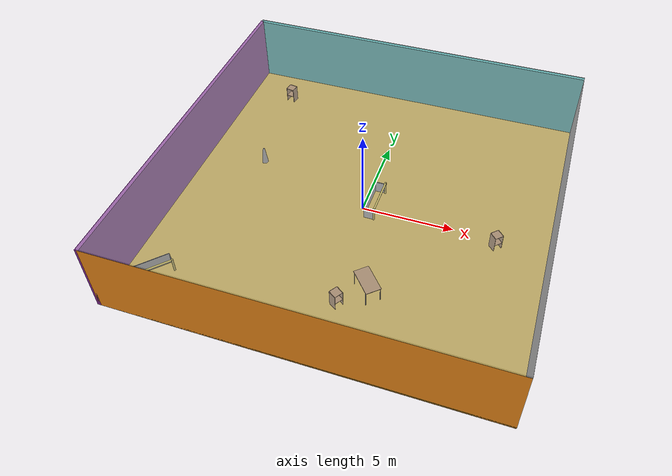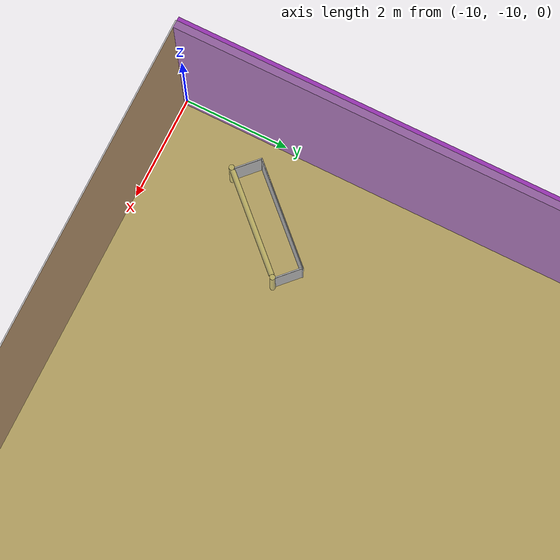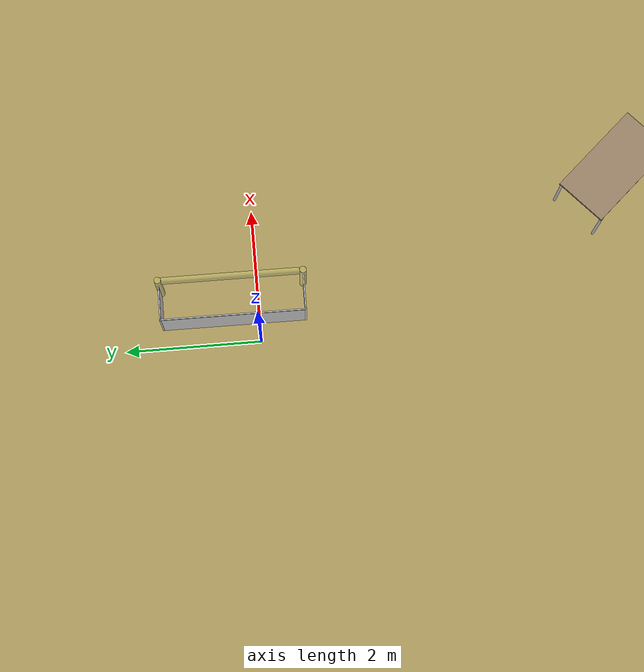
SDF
<sdf version="1.4">
 <world name="default">
  <physics type="ode">
   <max_step_size>0.001</max_step_size>
   <real_time_factor>1</real_time_factor>
   <real_time_update_rate>1000</real_time_update_rate>
   <gravity>0 0 -9.8</gravity>
  </physics>
  <scene><ambient>0.4 0.4 0.4 1</ambient><background>0.7 0.7 0.7 1</background><shadows>1</shadows></scene>
  <model name="Surrounding">
   <static>1</static>
   <link name="Ceiling">
    <collision name="Ceiling_Collision"><geometry><box><size>20 20 0.1</size></box></geometry></collision>
    <visual name="Ceiling_Visual">
     <geometry><box><size>20 20 0.1</size></box></geometry>
     <material>
      <script><uri>file://media/materials/scripts/gazebo.material</uri><name>Gazebo/GreyTransparent</name></script>
     </material>
    </visual>
    <pose>0 0 4.05 0 0 0</pose>
   </link>
   <link name="Wall_South">
    <collision name="Wall_South_Collision">
     <geometry><box><size>20 0 4</size></box></geometry>
     <pose>0 0 2 0 -0 0</pose>
    </collision>
    <visual name="Wall_South_Visual">
     <pose>0 0 2 0 -0 0</pose>
     <geometry><box><size>20 0 4</size></box></geometry>
     <material>
      <script><uri>file://media/materials/scripts/gazebo.material</uri><name>Gazebo/Orange</name></script>
     </material>
    </visual>
    <velocity_decay><linear>0</linear><angular>0</angular></velocity_decay>
    <pose>0 -10 0 0 -0 0</pose>
   </link>
   <link name="Wall_East">
    <collision name="Wall_21_Collision">
     <geometry><box><size>20 0 4</size></box></geometry>
     <pose>0 0 2 0 -0 0</pose>
    </collision>
    <visual name="Wall_21_Visual">
     <pose>0 0 2 0 -0 0</pose>
     <geometry><box><size>20 0 4</size></box></geometry>
     <material>
      <script><uri>file://media/materials/scripts/gazebo.material</uri><name>Gazebo/CloudySky</name></script>
     </material>
    </visual>
    <velocity_decay><linear>0</linear><angular>0</angular></velocity_decay>
    <pose>10 0 0 0 -0 1.5708</pose>
   </link>
   <link name="Wall_North">
    <collision name="Wall_22_Collision">
     <geometry><box><size>20 0.2 4</size></box></geometry>
     <pose>0 0 2 0 -0 0</pose>
    </collision>
    <visual name="Wall_22_Visual">
     <pose>0 0 2 0 -0 0</pose>
     <geometry><box><size>20 0.2 4</size></box></geometry>
     <material>
      <script>
       <uri>file://media/materials/scripts/gazebo.material</uri>
       <name>Gazebo/TurquoiseGlowOutline</name>
      </script>
     </material>
    </visual>
    <velocity_decay><linear>0</linear><angular>0</angular></velocity_decay>
    <pose>0 10 0 0 -0 0</pose>
   </link>
   <link name="Wall_West">
    <collision name="Wall_23_Collision">
     <geometry><box><size>20 0.2 4</size></box></geometry>
     <pose>0 0 2 0 -0 0</pose>
    </collision>
    <visual name="Wall_23_Visual">
     <pose>0 0 2 0 -0 0</pose>
     <geometry><box><size>20 0.2 4</size></box></geometry>
     <material>
      <script><uri>file://media/materials/scripts/gazebo.material</uri><name>Gazebo/PurpleGlow</name></script>
     </material>
    </visual>
    <velocity_decay><linear>0</linear><angular>0</angular></velocity_decay>
    <pose>-10 0 0 0 0 -1.5708</pose>
   </link>
   <link name="Ground_link">
    <collision name="collision">
     <pose>0 0 .05 0 -0 0</pose>
     <geometry><box><size>20 20 0.1</size></box></geometry>
    </collision>
    <visual name="visual">
     <pose>0 0 .05 0 -0 0</pose>
     <geometry><box><size>20 20 0.1</size></box></geometry>
     <material>
      <script><uri>file://media/materials/scripts/gazebo.material</uri><name>Gazebo/Gold</name></script>
     </material>
    </visual>
   </link>
   <static>1</static>
  </model>
  <spherical_coordinates>
   <surface_model>EARTH_WGS84</surface_model>
   <latitude_deg>0</latitude_deg>
   <longitude_deg>0</longitude_deg>
   <elevation>0</elevation>
   <heading_deg>0</heading_deg>
  </spherical_coordinates>
  <light name="lightball_0" type="diffuse">
   <diffuse>0.8 0.8 0.8 1</diffuse>
   <specular>0.2 0.2 0.2 1</specular>
   <attenuation>
    <range>100</range>
    <constant>0.7</constant>
    <linear>0.01</linear>
    <quadratic>0.001</quadratic>
   </attenuation>
   <direction>-0.5 0.1 -0.9</direction>
   <pose>3.50862402622 1.31558246936 2.52048149012 0 0 0</pose>
  </light>
  <light name="lightball_1" type="diffuse">
   <diffuse>0.8 0.8 0.8 1</diffuse>
   <specular>0.2 0.2 0.2 1</specular>
   <attenuation>
    <range>100</range>
    <constant>0.7</constant>
    <linear>0.01</linear>
    <quadratic>0.001</quadratic>
   </attenuation>
   <direction>-0.5 0.1 -0.9</direction>
   <pose>7.16425722001 -9.64612912636 2.51637551077 0 0 0</pose>
  </light>
  <light name="lightball_2" type="diffuse">
   <diffuse>0.8 0.8 0.8 1</diffuse>
   <specular>0.2 0.2 0.2 1</specular>
   <attenuation>
    <range>100</range>
    <constant>0.7</constant>
    <linear>0.01</linear>
    <quadratic>0.001</quadratic>
   </attenuation>
   <direction>-0.5 0.1 -0.9</direction>
   <pose>2.22591210523 -8.54726565843 3.07708728824 0 0 0</pose>
  </light>
  <light name="lightball_3" type="diffuse">
   <diffuse>0.8 0.8 0.8 1</diffuse>
   <specular>0.2 0.2 0.2 1</specular>
   <attenuation>
    <range>100</range>
    <constant>0.7</constant>
    <linear>0.01</linear>
    <quadratic>0.001</quadratic>
   </attenuation>
   <direction>-0.5 0.1 -0.9</direction>
   <pose>2.44147913611 7.89808032899 2.01798679962 0 0 0</pose>
  </light>
  <light name="lightball_4" type="diffuse">
   <diffuse>0.8 0.8 0.8 1</diffuse>
   <specular>0.2 0.2 0.2 1</specular>
   <attenuation>
    <range>100</range>
    <constant>0.7</constant>
    <linear>0.01</linear>
    <quadratic>0.001</quadratic>
   </attenuation>
   <direction>-0.5 0.1 -0.9</direction>
   <pose>8.80814851323 -0.853795934547 0.907315766067 0 0 0</pose>
  </light>
  <light name="lightball_5" type="diffuse">
   <diffuse>0.8 0.8 0.8 1</diffuse>
   <specular>0.2 0.2 0.2 1</specular>
   <attenuation>
    <range>100</range>
    <constant>0.7</constant>
    <linear>0.01</linear>
    <quadratic>0.001</quadratic>
   </attenuation>
   <direction>-0.5 0.1 -0.9</direction>
   <pose>-2.42313108346 -0.833249172781 3.16998858786 0 0 0</pose>
  </light>
  <light name="lightball_6" type="diffuse">
   <diffuse>0.8 0.8 0.8 1</diffuse>
   <specular>0.2 0.2 0.2 1</specular>
   <attenuation>
    <range>100</range>
    <constant>0.7</constant>
    <linear>0.01</linear>
    <quadratic>0.001</quadratic>
   </attenuation>
   <direction>-0.5 0.1 -0.9</direction>
   <pose>5.11227766531 8.89958363526 1.19363512438 0 0 0</pose>
  </light>
  <light name="lightball_7" type="diffuse">
   <diffuse>0.8 0.8 0.8 1</diffuse>
   <specular>0.2 0.2 0.2 1</specular>
   <attenuation>
    <range>100</range>
    <constant>0.7</constant>
    <linear>0.01</linear>
    <quadratic>0.001</quadratic>
   </attenuation>
   <direction>-0.5 0.1 -0.9</direction>
   <pose>6.72736748738 -7.77728175222 3.40099100031 0 0 0</pose>
  </light>
  <light name="lightball_8" type="diffuse">
   <diffuse>0.8 0.8 0.8 1</diffuse>
   <specular>0.2 0.2 0.2 1</specular>
   <attenuation>
    <range>100</range>
    <constant>0.7</constant>
    <linear>0.01</linear>
    <quadratic>0.001</quadratic>
   </attenuation>
   <direction>-0.5 0.1 -0.9</direction>
   <pose>-6.32597686309 -5.22744387393 0.919000740109 0 0 0</pose>
  </light>
  <include>
   <uri>model://robocup_3Dsim_goal</uri>
   <pose>-8.28501628741 -7.81572435616 0 0 0 2.38089441621</pose>
  </include>
  <include>
   <uri>model://construction_cone</uri>
   <pose>-6.54622080576 1.72790918484 0 0 0 2.11903304962</pose>
  </include>
  <include><uri>model://cabinet</uri><pose>-7.2922304235 7.71471687339 0 0 0 1.39269678157</pose></include>
  <include><uri>model://cabinet</uri><pose>0.792955240026 -6.47561534291 0 0 0 2.55731920944</pose></include>
  <include><uri>model://table</uri><pose>1.96432990142 -5.32089909206 0 0 0 2.30009325403</pose></include>
  <include>
   <uri>model://robocup_3Dsim_goal</uri>
   <pose>0.82603214488 0.365811575533 0 0 0 3.13643799067</pose>
  </include>
  <include><uri>model://cabinet</uri><pose>7.32591287109 -0.546484130152 0 0 0 2.34184724096</pose></include>
 </world>
</sdf>

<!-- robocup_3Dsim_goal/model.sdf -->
<sdf version="1.5">
  <model name="robocup_3d_goal">
    <static>true</static>
    <link name="left_post">
      <pose>0 1.05 0.45 0 0 0</pose>
      <collision name="collision">
        <geometry>
          <cylinder>
            <radius>0.05</radius>
            <length>0.9</length>
          </cylinder>
        </geometry>
      </collision>
      <visual name="visual">
        <geometry>
          <cylinder>
            <radius>0.05</radius>
            <length>0.9</length>
          </cylinder>
        </geometry>
        <material>
          <script>
            <uri>file://media/materials/scripts/gazebo.material</uri>
            <name>Gazebo/ZincYellow</name>
          </script>
        </material>
      </visual>
    </link>
    <link name="left_support_horiz_lower">
      <pose>0.30 1.05 0.01 0 0 0</pose>
      <collision name="collision">
        <geometry>
          <box>
            <size>0.50 0.02 0.02</size>
          </box>
        </geometry>
      </collision>
      <visual name="visual">
        <geometry>
          <box>
            <size>0.50 0.02 0.02</size>
          </box>
        </geometry>
        <material>
          <script>
            <uri>file://media/materials/scripts/gazebo.material</uri>
            <name>Gazebo/White</name>
          </script>
        </material>
      </visual>
    </link>
    <link name="left_support_horiz_upper">
      <pose>0.30 1.05 0.79 0 0 0</pose>
      <collision name="collision">
        <geometry>
          <box>
            <size>0.50 0.02 0.02</size>
          </box>
        </geometry>
      </collision>
      <visual name="visual">
        <geometry>
          <box>
            <size>0.50 0.02 0.02</size>
          </box>
        </geometry>
        <material>
          <script>
            <uri>file://media/materials/scripts/gazebo.material</uri>
            <name>Gazebo/White</name>
          </script>
        </material>
      </visual>
    </link>
    <link name="left_support_vertical">
      <pose>0.56 1.05 0.4 0 1.5708 0</pose>
      <collision name="collision">
        <geometry>
          <box>
            <size>0.80 0.02 0.02</size>
          </box>
        </geometry>
      </collision>
      <visual name="visual">
        <geometry>
          <box>
            <size>0.80 0.02 0.02</size>
          </box>
        </geometry>
        <material>
          <script>
            <uri>file://media/materials/scripts/gazebo.material</uri>
            <name>Gazebo/White</name>
          </script>
        </material>
      </visual>
    </link>
    <link name="right_support_horiz_lower">
      <pose>0.30 -1.05 0.01 0 0 0</pose>
      <collision name="collision">
        <geometry>
          <box>
            <size>0.50 0.02 0.02</size>
          </box>
        </geometry>
      </collision>
      <visual name="visual">
        <geometry>
          <box>
            <size>0.50 0.02 0.02</size>
          </box>
        </geometry>
        <material>
          <script>
            <uri>file://media/materials/scripts/gazebo.material</uri>
            <name>Gazebo/White</name>
          </script>
        </material>
      </visual>
    </link>
    <link name="right_support_horiz_upper">
      <pose>0.30 -1.05 0.79 0 0 0</pose>
      <collision name="collision">
        <geometry>
          <box>
            <size>0.50 0.02 0.02</size>
          </box>
        </geometry>
      </collision>
      <visual name="visual">
        <geometry>
          <box>
            <size>0.50 0.02 0.02</size>
          </box>
        </geometry>
        <material>
          <script>
            <uri>file://media/materials/scripts/gazebo.material</uri>
            <name>Gazebo/White</name>
          </script>
        </material>
      </visual>
    </link>
    <link name="right_support_vertical">
      <pose>0.56 -1.05 0.4 0 1.5708 0</pose>
      <collision name="collision">
        <geometry>
          <box>
            <size>0.80 0.02 0.02</size>
          </box>
        </geometry>
      </collision>
      <visual name="visual">
        <geometry>
          <box>
            <size>0.80 0.02 0.02</size>
          </box>
        </geometry>
        <material>
          <script>
            <uri>file://media/materials/scripts/gazebo.material</uri>
            <name>Gazebo/White</name>
          </script>
        </material>
      </visual>
    </link>
    <link name="center_support_horiz_lower">
      <pose>0.56 0 0.01 0 1.5708 0</pose>
      <collision name="collision">
        <geometry>
          <box>
            <size>0.02 2.08 0.02</size>
          </box>
        </geometry>
      </collision>
      <visual name="visual">
        <geometry>
          <box>
            <size>0.02 2.08 0.02</size>
          </box>
        </geometry>
        <material>
          <script>
            <uri>file://media/materials/scripts/gazebo.material</uri>
            <name>Gazebo/White</name>
          </script>
        </material>
      </visual>
    </link>
    <link name="center_support_horiz_upper">
      <pose>0.56 0 0.79 0 1.5708 0</pose>
      <collision name="collision">
        <geometry>
          <box>
            <size>0.02 2.08 0.02</size>
          </box>
        </geometry>
      </collision>
      <visual name="visual">
        <geometry>
          <box>
            <size>0.02 2.08 0.02</size>
          </box>
        </geometry>
        <material>
          <script>
            <uri>file://media/materials/scripts/gazebo.material</uri>
            <name>Gazebo/White</name>
          </script>
        </material>
      </visual>
    </link>
    <link name="right_post">
      <pose>0 -1.05 0.45 0 0 0</pose>
      <collision name="collision">
        <geometry>
          <cylinder>
            <radius>0.05</radius>
            <length>0.9</length>
          </cylinder>
        </geometry>
      </collision>
      <visual name="visual">
        <geometry>
          <cylinder>
            <radius>0.05</radius>
            <length>0.9</length>
          </cylinder>
        </geometry>
        <material>
          <script>
            <uri>file://media/materials/scripts/gazebo.material</uri>
            <name>Gazebo/ZincYellow</name>
          </script>
        </material>
      </visual>
    </link>
    <link name="crossbar">
      <pose>0 0 0.85 1.57 1.57 0</pose>
      <collision name="collision">
        <geometry>
          <cylinder>
            <radius>0.05</radius>
            <length>2.0</length>
          </cylinder>
        </geometry>
      </collision>
      <visual name="visual">
        <geometry>
          <cylinder>
            <radius>0.05</radius>
            <length>2.0</length>
          </cylinder>
        </geometry>
        <material>
          <script>
            <uri>file://media/materials/scripts/gazebo.material</uri>
            <name>Gazebo/ZincYellow</name>
          </script>
        </material>
      </visual>
    </link>
    <link name="center_net">
      <pose>0.56 0 0.40 0 0 0</pose>
      <collision name="collision">
        <geometry>
          <box>
            <size>0.01 2.1 0.80</size>
          </box>
        </geometry>
      </collision>
      <visual name="visual">
        <geometry>
          <box>
            <size>0.01 2.1 0.80</size>
          </box>
        </geometry>
        <material>
          <script>
            <uri>model://../model_source/models/robocup09_spl_field/materials/scripts/</uri>
            <uri>model://../model_source/models/robocup09_spl_field/materials/textures/</uri>
            <name>RoboCup/Net</name>
          </script>
        </material>
      </visual>
    </link>
    <link name="left_net">
      <pose>0.30 1.05 0.40 0 0 0</pose>
      <collision name="collision">
        <geometry>
          <box>
            <size>0.50 0.01 0.76</size>
          </box>
        </geometry>
      </collision>
      <visual name="visual">
        <geometry>
          <box>
            <size>0.50 0.01 0.76</size>
          </box>
        </geometry>
        <material>
          <script>
            <uri>model://../model_source/models/robocup09_spl_field/materials/scripts/</uri>
            <uri>model://../model_source/models/robocup09_spl_field/materials/textures/</uri>
            <name>RoboCup/Net</name>
          </script>
        </material>
      </visual>
    </link>
    <link name="right_net">
      <pose>0.30 -1.05 0.40 0 0 0</pose>
      <collision name="collision">
        <geometry>
          <box>
            <size>0.50 0.01 0.76</size>
          </box>
        </geometry>
      </collision>
      <visual name="visual">
        <geometry>
          <box>
            <size>0.50 0.01 0.76</size>
          </box>
        </geometry>
        <material>
          <script>
            <uri>model://../model_source/models/robocup09_spl_field/materials/scripts/</uri>
            <uri>model://../model_source/models/robocup09_spl_field/materials/textures/</uri>
            <name>RoboCup/Net</name>
          </script>
        </material>
      </visual>
    </link>
  </model>
</sdf>

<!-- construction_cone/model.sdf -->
<sdf version="1.5">
  <model name="Construction Cone">
    <link name="link">
      <collision name="collision">
        <geometry>
          <mesh>
            <scale>10 10 10</scale>
            <uri>file://isr-testbed/construction_cone/meshes/construction_cone.dae</uri>
          </mesh>
        </geometry>
      </collision>
      <visual name="visual">
        <geometry>
          <mesh>
            <scale>10 10 10</scale>
            <uri>file://isr-testbed/construction_cone/meshes/construction_cone.dae</uri>
          </mesh>
        </geometry>
      </visual>
    </link>
  </model>
</sdf>

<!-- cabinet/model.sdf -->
<sdf version="1.5">
  <model name="cabinet">
    <static>true</static>
    <link name="cabinet_bottom_plate">
      <inertial>
        <pose>0 0 -1 0 0 0</pose>
        <inertia>
          <ixx>2.050000</ixx>
          <ixy>0</ixy>
          <ixz>0</ixz>
          <iyy>2.050000</iyy>
          <iyz>0</iyz>
          <izz>2.050000</izz>
        </inertia>
        <mass>25.000000</mass>
      </inertial>
      <collision name="cabinet_bottom_plate_geom">
        <pose>0 0 0.010000 0 0 0</pose>
        <geometry>
          <box>
            <size>0.450000 0.450000 0.020000</size>
          </box>
        </geometry>
      </collision>
      <visual name="cabinet_bottom_plate_geom_visual">
        <pose>0 0 0.010000 0 0 0</pose>
        <geometry>
          <box>
            <size>0.450000 0.450000 0.020000</size>
          </box>
        </geometry>
        <material>
          <script>
            <uri>model://media/materials/scripts/gazebo.material</uri>
            <name>Gazebo/Wood</name>
          </script>
        </material>
      </visual>
      <collision name="cabinet_bottom_plate_geom_cabinet_back_plate">
        <pose>0.235000 0 0.510000 0 0 0</pose>
        <geometry>
          <box>
            <size>0.020000 0.450000 1.020000</size>
          </box>
        </geometry>
      </collision>
      <visual name="cabinet_bottom_plate_geom_cabinet_back_plate_visual">
        <pose>0.235000 0 0.510000 0 0 0</pose>
        <geometry>
          <box>
            <size>0.020000 0.450000 1.020000</size>
          </box>
        </geometry>
        <material>
          <script>
            <uri>model://media/materials/scripts/gazebo.material</uri>
            <name>Gazebo/Wood</name>
          </script>
        </material>
      </visual>
      <collision name="cabinet_bottom_plate_geom_cabinet_left_plate">
        <pose>0 0.235000 0.510000 0 0 0</pose>
        <geometry>
          <box>
            <size>0.450000 0.020000 1.020000</size>
          </box>
        </geometry>
      </collision>
      <visual name="cabinet_bottom_plate_geom_cabinet_left_plate_visual">
        <pose>0 0.235000 0.510000 0 0 0</pose>
        <geometry>
          <box>
            <size>0.450000 0.020000 1.020000</size>
          </box>
        </geometry>
        <material>
          <script>
            <uri>model://media/materials/scripts/gazebo.material</uri>
            <name>Gazebo/Wood</name>
          </script>
        </material>
      </visual>
      <collision name="cabinet_bottom_plate_geom_cabinet_middle_plate">
        <pose>0 0 0.510000 0 0 0</pose>
        <geometry>
          <box>
            <size>0.450000 0.450000 0.020000</size>
          </box>
        </geometry>
      </collision>
      <visual name="cabinet_bottom_plate_geom_cabinet_middle_plate_visual">
        <pose>0 0 0.510000 0 0 0</pose>
        <geometry>
          <box>
            <size>0.450000 0.450000 0.020000</size>
          </box>
        </geometry>
        <material>
          <script>
            <uri>model://media/materials/scripts/gazebo.material</uri>
            <name>Gazebo/Wood</name>
          </script>
        </material>
      </visual>
      <collision name="cabinet_bottom_plate_geom_cabinet_right_plate">
        <pose>0 -0.235000 0.510000 0 0 0</pose>
        <geometry>
          <box>
            <size>0.450000 0.020000 1.020000</size>
          </box>
        </geometry>
      </collision>
      <visual name="cabinet_bottom_plate_geom_cabinet_right_plate_visual">
        <pose>0 -0.235000 0.510000 0 0 0</pose>
        <geometry>
          <box>
            <size>0.450000 0.020000 1.020000</size>
          </box>
        </geometry>
        <material>
          <script>
            <uri>model://media/materials/scripts/gazebo.material</uri>
            <name>Gazebo/Wood</name>
          </script>
        </material>
      </visual>
      <collision name="cabinet_bottom_plate_geom_cabinet_top_plate">
        <pose>0 0 1.010000 0 0 0</pose>
        <geometry>
          <box>
            <size>0.450000 0.450000 0.020000</size>
          </box>
        </geometry>
      </collision>
      <visual name="cabinet_bottom_plate_geom_cabinet_top_plate_visual">
        <pose>0 0 1.010000 0 0 0</pose>
        <geometry>
          <box>
            <size>0.450000 0.450000 0.020000</size>
          </box>
        </geometry>
        <material>
          <script>
            <uri>model://media/materials/scripts/gazebo.material</uri>
            <name>Gazebo/Wood</name>
          </script>
        </material>
      </visual>
    </link>
  </model>
</sdf>

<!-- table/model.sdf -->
<sdf version="1.5">
  <model name="table">
    <static>true</static>
    <link name="link">
      <collision name="surface">
        <pose>0 0 1.0 0 0 0</pose>
        <geometry>
          <box>
            <size>1.5 0.8 0.03</size>
          </box>
        </geometry>
        <surface>
          <friction>
            <ode>
              <mu>0.6</mu>
              <mu2>0.6</mu2>
            </ode>
          </friction>
        </surface>
      </collision>
      <visual name="visual1">
        <pose>0 0 1.0 0 0 0</pose>
        <geometry>
          <box>
            <size>1.5 0.8 0.03</size>
          </box>
        </geometry>
        <material>
          <script>
            <uri>model://media/materials/scripts/gazebo.material</uri>
            <name>Gazebo/Wood</name>
          </script>
        </material>
      </visual>
      <collision name="front_left_leg">
        <pose>0.68 0.38 0.5 0 0 0</pose>
        <geometry>
          <cylinder>
            <radius>0.02</radius>
            <length>1.0</length>
          </cylinder>
        </geometry>
      </collision>
      <visual name="front_left_leg">
        <pose>0.68 0.38 0.5 0 0 0</pose>
        <geometry>
          <cylinder>
            <radius>0.02</radius>
            <length>1.0</length>
          </cylinder>
        </geometry>
        <material>
          <script>
            <uri>model://media/materials/scripts/gazebo.material</uri>
            <name>Gazebo/Grey</name>
          </script>
        </material>
      </visual>
      <collision name="front_right_leg">
        <pose>0.68 -0.38 0.5 0 0 0</pose>
        <geometry>
          <cylinder>
            <radius>0.02</radius>
            <length>1.0</length>
          </cylinder>
        </geometry>
      </collision>
      <visual name="front_right_leg">
        <pose>0.68 -0.38 0.5 0 0 0</pose>
        <geometry>
          <cylinder>
            <radius>0.02</radius>
            <length>1.0</length>
          </cylinder>
        </geometry>
        <material>
          <script>
            <uri>model://media/materials/scripts/gazebo.material</uri>
            <name>Gazebo/Grey</name>
          </script>
        </material>
      </visual>
      <collision name="back_right_leg">
        <pose>-0.68 -0.38 0.5 0 0 0</pose>
        <geometry>
          <cylinder>
            <radius>0.02</radius>
            <length>1.0</length>
          </cylinder>
        </geometry>
      </collision>
      <visual name="back_right_leg">
        <pose>-0.68 -0.38 0.5 0 0 0</pose>
        <geometry>
          <cylinder>
            <radius>0.02</radius>
            <length>1.0</length>
          </cylinder>
        </geometry>
        <material>
          <script>
            <uri>model://media/materials/scripts/gazebo.material</uri>
            <name>Gazebo/Grey</name>
          </script>
        </material>
      </visual>
      <collision name="back_left_leg">
        <pose>-0.68 0.38 0.5 0 0 0</pose>
        <geometry>
          <cylinder>
            <radius>0.02</radius>
            <length>1.0</length>
          </cylinder>
        </geometry>
      </collision>
      <visual name="back_left_leg">
        <pose>-0.68 0.38 0.5 0 0 0</pose>
        <geometry>
          <cylinder>
            <radius>0.02</radius>
            <length>1.0</length>
          </cylinder>
        </geometry>
        <material>
          <script>
            <uri>model://media/materials/scripts/gazebo.material</uri>
            <name>Gazebo/Grey</name>
          </script>
        </material>
      </visual>
    </link>
  </model>
</sdf>
